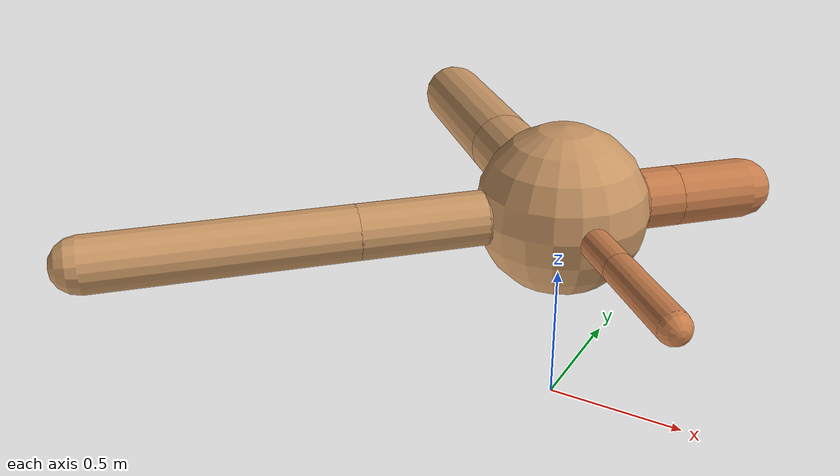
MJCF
<?xml version="1.0" ?>
<mujoco model="ant">

	<compiler angle="degree" coordinate="local" inertiafromgeom="true"/>

	<option integrator="RK4" timestep="0.01"/>

	<custom>

		<numeric data="0.0 0.0 0.55 1.0 0.0 0.0 0.0 0.0 1.0 0.0 -1.0 0.0 -1.0 0.0 1.0" name="init_qpos"/>

	</custom>

	<default>

		<joint armature="1" damping="1" limited="true"/>

		<geom conaffinity="0" condim="3" density="5.0" friction="1.5 0.1 0.1" margin="0.01" rgba="0.8 0.6 0.4 1"/>

	</default>

	<worldbody>

		<body name="torso" pos="0 0 0.75">

			<geom name="torso_geom" pos="0 0 0" size="0.29850737446721665" type="sphere"/>

			<!--joint armature="0" damping="0" limited="false" margin="0.01" name="root" pos="0 0 0" type="free"/-->

			<body name="front_left_leg" pos="0 0 0">

				<geom fromto="0 0 0 0.2 0.2 0" name="aux_1_geom" size="0.1055592920460471" type="capsule" rgba=".8 .5 .3 1"/>

				<body name="aux_1" pos="0.2 0.2 0">

					<joint axis="0 0 1" name="hip_1" pos="0.0 0.0 0.0" range="-40 40" type="hinge"/>

					<geom fromto="0 0 0 0.09436429407095792 0.09436429407095792 0" name="left_leg_geom" size="0.1055592920460471" type="capsule" rgba=".8 .5 .3 1"/>

					<body pos="0.09436429407095792 0.09436429407095792 0" name="front_left_foot">

						<joint axis="-1 1 0" name="ankle_1" pos="0.0 0.0 0.0" range="30 100" type="hinge"/>

						<geom fromto="0 0 0 0.18872858814191584 0.18872858814191584 0" name="left_ankle_geom" size="0.1055592920460471" type="capsule" rgba=".8 .5 .3 1"/>

					</body>

				</body>

			</body>

			<body name="front_right_leg" pos="0 0 0">

				<geom fromto="0 0 0 -0.2 0.2 0" name="aux_2_geom" size="0.1285910684029016" type="capsule"/>

				<body name="aux_2" pos="-0.2 0.2 0">

					<joint axis="0 0 1" name="hip_2" pos="0.0 0.0 0.0" range="-40 40" type="hinge"/>

					<geom fromto="0 0 0 -0.24292362010234272 0.24292362010234272 0" name="right_leg_geom" size="0.1285910684029016" type="capsule"/>

					<body pos="-0.24292362010234272 0.24292362010234272 0" name="front_right_foot">

						<joint axis="1 1 0" name="ankle_2" pos="0.0 0.0 0.0" range="-100 -30" type="hinge"/>

						<geom fromto="0 0 0 -0.48584724020468545 0.48584724020468545 0" name="right_ankle_geom" size="0.1285910684029016" type="capsule"/>

					</body>

				</body>

			</body>

			<body name="left_back_leg" pos="0 0 0">

				<geom fromto="0 0 0 -0.2 -0.2 0" name="aux_3_geom" size="0.09374976827997294" type="capsule"/>

				<body name="aux_3" pos="-0.2 -0.2 0">

					<joint axis="0 0 1" name="hip_3" pos="0.0 0.0 0.0" range="-40 40" type="hinge"/>

					<geom fromto="0 0 0 -0.3042159450058275 -0.3042159450058275 0" name="back_leg_geom" size="0.09374976827997294" type="capsule"/>

					<body pos="-0.3042159450058275 -0.3042159450058275 0" name="left_back_foot">

						<joint axis="-1 1 0" name="ankle_3" pos="0.0 0.0 0.0" range="-100 -30" type="hinge"/>

						<geom fromto="0 0 0 -0.608431890011655 -0.608431890011655 0" name="third_ankle_geom" size="0.09374976827997294" type="capsule"/>

					</body>

				</body>

			</body>

			<body name="right_back_leg" pos="0 0 0">

				<geom fromto="0 0 0 0.2 -0.2 0" name="aux_4_geom" size="0.052944353733764285" type="capsule" rgba=".8 .5 .3 1"/>

				<body name="aux_4" pos="0.2 -0.2 0">

					<joint axis="0 0 1" name="hip_4" pos="0.0 0.0 0.0" range="-40 40" type="hinge"/>

					<geom fromto="0 0 0 0.12473856630999414 -0.12473856630999414 0" name="rightback_leg_geom" size="0.052944353733764285" type="capsule" rgba=".8 .5 .3 1"/>

					<body pos="0.12473856630999414 -0.12473856630999414 0" name="right_back_foot">

						<joint axis="1 1 0" name="ankle_4" pos="0.0 0.0 0.0" range="30 100" type="hinge"/>

						<geom fromto="0 0 0 0.24947713261998827 -0.24947713261998827 0" name="fourth_ankle_geom" size="0.052944353733764285" type="capsule" rgba=".8 .5 .3 1"/>

					</body>

				</body>

			</body>

		</body>

	</worldbody>

	<actuator>

		<motor ctrllimited="true" ctrlrange="-1.0 1.0" joint="hip_4" gear="150"/>

		<motor ctrllimited="true" ctrlrange="-1.0 1.0" joint="ankle_4" gear="150"/>

		<motor ctrllimited="true" ctrlrange="-1.0 1.0" joint="hip_1" gear="150"/>

		<motor ctrllimited="true" ctrlrange="-1.0 1.0" joint="ankle_1" gear="150"/>

		<motor ctrllimited="true" ctrlrange="-1.0 1.0" joint="hip_2" gear="150"/>

		<motor ctrllimited="true" ctrlrange="-1.0 1.0" joint="ankle_2" gear="150"/>

		<motor ctrllimited="true" ctrlrange="-1.0 1.0" joint="hip_3" gear="150"/>

		<motor ctrllimited="true" ctrlrange="-1.0 1.0" joint="ankle_3" gear="150"/>

	</actuator>

</mujoco>
